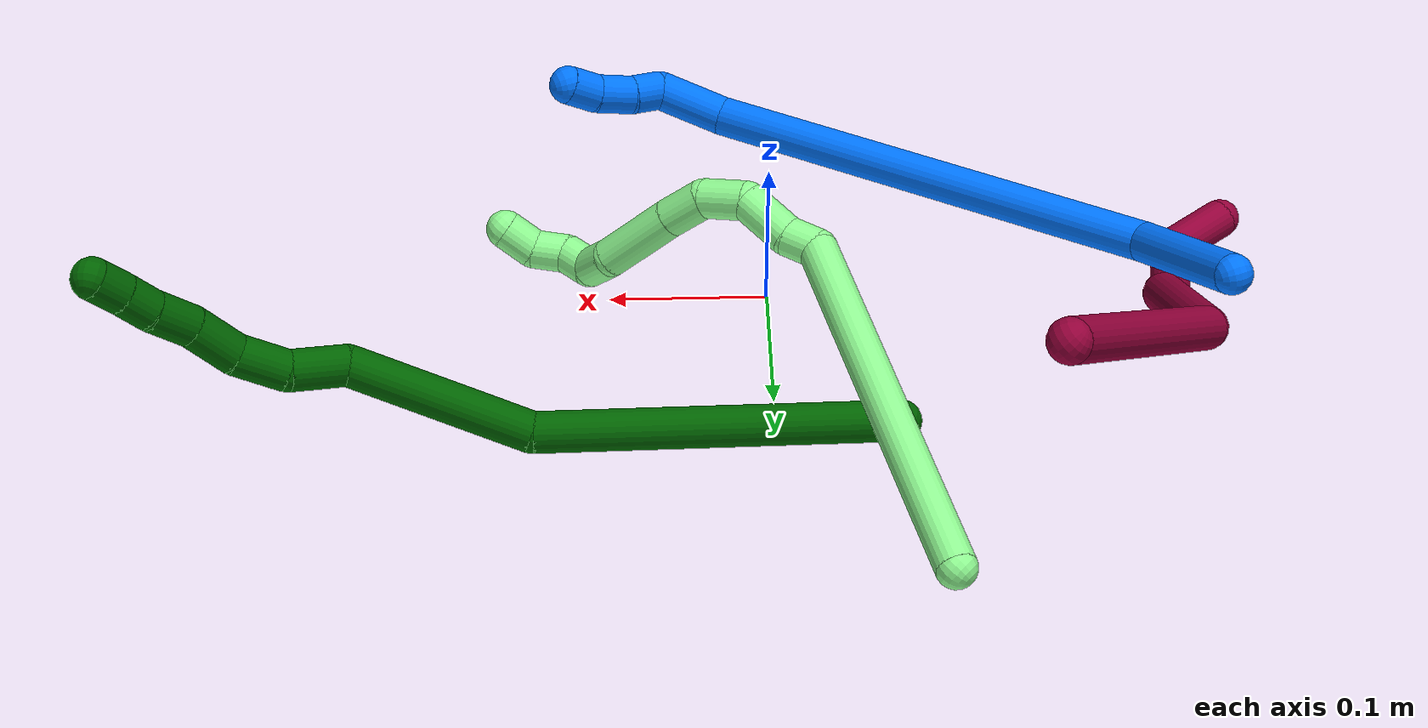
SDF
<sdf version="1.7">
 <world name="default">
  <model name="6">
   <static>0</static>
   <link name="6">
    <collision name="collision-cylinder-e_1_1_4">
     <pose>0.105768 0.010625 0.023665 -0.421993 1.33028 -0.332894</pose>
     <geometry><cylinder><radius>0.0125</radius><length>0.217805</length></cylinder></geometry>
     <surface>
      <friction><ode><mu>1.16</mu><mu2>1.16</mu2><slip1>0</slip1><slip2>0</slip2></ode></friction>
      <contact><ode><kp>1e+06</kp><kd>1</kd><max_vel>0</max_vel><min_depth>0.001</min_depth></ode></contact>
     </surface>
    </collision>
    <visual name="visual-cylinder-e_1_1_4">
     <pose>0.105768 0.010625 0.023665 -0.421993 1.33028 -0.332894</pose>
     <geometry><cylinder><radius>0.0125</radius><length>0.217805</length></cylinder></geometry>
     <material><ambient>0 0.392157 0.003922 1</ambient></material>
    </visual>
    <collision name="collision-cylinder-e_2_4_5">
     <pose>0.268173 0.018616 0.039592 2.81357 1.42748 2.76396</pose>
     <geometry><cylinder><radius>0.0125</radius><length>0.114448</length></cylinder></geometry>
     <surface>
      <friction><ode><mu>1.16</mu><mu2>1.16</mu2><slip1>0</slip1><slip2>0</slip2></ode></friction>
      <contact><ode><kp>1e+06</kp><kd>1</kd><max_vel>0</max_vel><min_depth>0.001</min_depth></ode></contact>
     </surface>
    </collision>
    <visual name="visual-cylinder-e_2_4_5">
     <pose>0.268173 0.018616 0.039592 2.81357 1.42748 2.76396</pose>
     <geometry><cylinder><radius>0.0125</radius><length>0.114448</length></cylinder></geometry>
     <material><ambient>0 0.392157 0.003922 1</ambient></material>
    </visual>
    <collision name="collision-cylinder-e_3_5_6">
     <pose>0.341027 0.013223 0.039268 0.356381 1.11696 0.224123</pose>
     <geometry><cylinder><radius>0.0125</radius><length>0.036086</length></cylinder></geometry>
     <surface>
      <friction><ode><mu>1.16</mu><mu2>1.16</mu2><slip1>0</slip1><slip2>0</slip2></ode></friction>
      <contact><ode><kp>1e+06</kp><kd>1</kd><max_vel>0</max_vel><min_depth>0.001</min_depth></ode></contact>
     </surface>
    </collision>
    <visual name="visual-cylinder-e_3_5_6">
     <pose>0.341027 0.013223 0.039268 0.356381 1.11696 0.224123</pose>
     <geometry><cylinder><radius>0.0125</radius><length>0.036086</length></cylinder></geometry>
     <material><ambient>0 0.392157 0.003922 1</ambient></material>
    </visual>
    <collision name="collision-cylinder-e_4_6_7">
     <pose>0.372571 0.006294 0.047186 1.4505 1.30335 1.18914</pose>
     <geometry><cylinder><radius>0.0125</radius><length>0.031786</length></cylinder></geometry>
     <surface>
      <friction><ode><mu>1.16</mu><mu2>1.16</mu2><slip1>0</slip1><slip2>0</slip2></ode></friction>
      <contact><ode><kp>1e+06</kp><kd>1</kd><max_vel>0</max_vel><min_depth>0.001</min_depth></ode></contact>
     </surface>
    </collision>
    <visual name="visual-cylinder-e_4_6_7">
     <pose>0.372571 0.006294 0.047186 1.4505 1.30335 1.18914</pose>
     <geometry><cylinder><radius>0.0125</radius><length>0.031786</length></cylinder></geometry>
     <material><ambient>0 0.392157 0.003922 1</ambient></material>
    </visual>
    <collision name="collision-cylinder-e_5_7_8">
     <pose>0.401057 -0.006326 0.04627 1.73727 0.99354 1.13977</pose>
     <geometry><cylinder><radius>0.0125</radius><length>0.031405</length></cylinder></geometry>
     <surface>
      <friction><ode><mu>1.16</mu><mu2>1.16</mu2><slip1>0</slip1><slip2>0</slip2></ode></friction>
      <contact><ode><kp>1e+06</kp><kd>1</kd><max_vel>0</max_vel><min_depth>0.001</min_depth></ode></contact>
     </surface>
    </collision>
    <visual name="visual-cylinder-e_5_7_8">
     <pose>0.401057 -0.006326 0.04627 1.73727 0.99354 1.13977</pose>
     <geometry><cylinder><radius>0.0125</radius><length>0.031405</length></cylinder></geometry>
     <material><ambient>0 0.392157 0.003922 1</ambient></material>
    </visual>
    <collision name="collision-cylinder-e_6_8_9">
     <pose>0.42537 -0.022602 0.046878 1.31713 0.943673 0.752128</pose>
     <geometry><cylinder><radius>0.0125</radius><length>0.027551</length></cylinder></geometry>
     <surface>
      <friction><ode><mu>1.16</mu><mu2>1.16</mu2><slip1>0</slip1><slip2>0</slip2></ode></friction>
      <contact><ode><kp>1e+06</kp><kd>1</kd><max_vel>0</max_vel><min_depth>0.001</min_depth></ode></contact>
     </surface>
    </collision>
    <visual name="visual-cylinder-e_6_8_9">
     <pose>0.42537 -0.022602 0.046878 1.31713 0.943673 0.752128</pose>
     <geometry><cylinder><radius>0.0125</radius><length>0.027551</length></cylinder></geometry>
     <material><ambient>0 0.392157 0.003922 1</ambient></material>
    </visual>
    <collision name="collision-cylinder-e_7_9_10">
     <pose>0.444754 -0.036342 0.048895 1.57274 0.94769 0.949268</pose>
     <geometry><cylinder><radius>0.0125</radius><length>0.020271</length></cylinder></geometry>
     <surface>
      <friction><ode><mu>1.16</mu><mu2>1.16</mu2><slip1>0</slip1><slip2>0</slip2></ode></friction>
      <contact><ode><kp>1e+06</kp><kd>1</kd><max_vel>0</max_vel><min_depth>0.001</min_depth></ode></contact>
     </surface>
    </collision>
    <visual name="visual-cylinder-e_7_9_10">
     <pose>0.444754 -0.036342 0.048895 1.57274 0.94769 0.949268</pose>
     <geometry><cylinder><radius>0.0125</radius><length>0.020271</length></cylinder></geometry>
     <material><ambient>0 0.392157 0.003922 1</ambient></material>
    </visual>
    <collision name="collision-cylinder-e_8_10_2">
     <pose>0.461122 -0.048564 0.04965 1.44998 0.907783 0.815933</pose>
     <geometry><cylinder><radius>0.0125</radius><length>0.020649</length></cylinder></geometry>
     <surface>
      <friction><ode><mu>1.16</mu><mu2>1.16</mu2><slip1>0</slip1><slip2>0</slip2></ode></friction>
      <contact><ode><kp>1e+06</kp><kd>1</kd><max_vel>0</max_vel><min_depth>0.001</min_depth></ode></contact>
     </surface>
    </collision>
    <visual name="visual-cylinder-e_8_10_2">
     <pose>0.461122 -0.048564 0.04965 1.44998 0.907783 0.815933</pose>
     <geometry><cylinder><radius>0.0125</radius><length>0.020649</length></cylinder></geometry>
     <material><ambient>0 0.392157 0.003922 1</ambient></material>
    </visual>
    <collision name="collision-sphere-2">
     <pose>0.469259 -0.054873 0.050416 0 -0 0</pose>
     <geometry><sphere><radius>0.0125</radius></sphere></geometry>
     <surface>
      <friction><ode><mu>1.16</mu><mu2>1.16</mu2><slip1>0</slip1><slip2>0</slip2></ode></friction>
      <contact><ode><kp>1e+06</kp><kd>1</kd><max_vel>0</max_vel><min_depth>0.001</min_depth></ode></contact>
     </surface>
    </collision>
    <visual name="visual-sphere-2">
     <pose>0.469259 -0.054873 0.050416 0 -0 0</pose>
     <geometry><sphere><radius>0.0125</radius></sphere></geometry>
     <material><ambient>0 0.392157 0.003922 1</ambient></material>
    </visual>
    <collision name="collision-sphere-10">
     <pose>0.452985 -0.042256 0.048884 0 -0 0</pose>
     <geometry><sphere><radius>0.0125</radius></sphere></geometry>
     <surface>
      <friction><ode><mu>1.16</mu><mu2>1.16</mu2><slip1>0</slip1><slip2>0</slip2></ode></friction>
      <contact><ode><kp>1e+06</kp><kd>1</kd><max_vel>0</max_vel><min_depth>0.001</min_depth></ode></contact>
     </surface>
    </collision>
    <visual name="visual-sphere-10">
     <pose>0.452985 -0.042256 0.048884 0 -0 0</pose>
     <geometry><sphere><radius>0.0125</radius></sphere></geometry>
     <material><ambient>0 0.392157 0.003922 1</ambient></material>
    </visual>
    <collision name="collision-sphere-9">
     <pose>0.436524 -0.030427 0.048907 0 -0 0</pose>
     <geometry><sphere><radius>0.0125</radius></sphere></geometry>
     <surface>
      <friction><ode><mu>1.16</mu><mu2>1.16</mu2><slip1>0</slip1><slip2>0</slip2></ode></friction>
      <contact><ode><kp>1e+06</kp><kd>1</kd><max_vel>0</max_vel><min_depth>0.001</min_depth></ode></contact>
     </surface>
    </collision>
    <visual name="visual-sphere-9">
     <pose>0.436524 -0.030427 0.048907 0 -0 0</pose>
     <geometry><sphere><radius>0.0125</radius></sphere></geometry>
     <material><ambient>0 0.392157 0.003922 1</ambient></material>
    </visual>
    <collision name="collision-sphere-4">
     <pose>0.211536 0.02125 0.04733 0 -0 0</pose>
     <geometry><sphere><radius>0.0125</radius></sphere></geometry>
     <surface>
      <friction><ode><mu>1.16</mu><mu2>1.16</mu2><slip1>0</slip1><slip2>0</slip2></ode></friction>
      <contact><ode><kp>1e+06</kp><kd>1</kd><max_vel>0</max_vel><min_depth>0.001</min_depth></ode></contact>
     </surface>
    </collision>
    <visual name="visual-sphere-4">
     <pose>0.211536 0.02125 0.04733 0 -0 0</pose>
     <geometry><sphere><radius>0.0125</radius></sphere></geometry>
     <material><ambient>0 0.392157 0.003922 1</ambient></material>
    </visual>
    <collision name="collision-sphere-1">
     <geometry><sphere><radius>0.0125</radius></sphere></geometry>
     <surface>
      <friction><ode><mu>1.16</mu><mu2>1.16</mu2><slip1>0</slip1><slip2>0</slip2></ode></friction>
      <contact><ode><kp>1e+06</kp><kd>1</kd><max_vel>0</max_vel><min_depth>0.001</min_depth></ode></contact>
     </surface>
    </collision>
    <visual name="visual-sphere-1">
     <geometry><sphere><radius>0.0125</radius></sphere></geometry>
     <material><ambient>0 0.392157 0.003922 1</ambient></material>
    </visual>
    <collision name="collision-sphere-8">
     <pose>0.414215 -0.014777 0.04485 0 -0 0</pose>
     <geometry><sphere><radius>0.0125</radius></sphere></geometry>
     <surface>
      <friction><ode><mu>1.16</mu><mu2>1.16</mu2><slip1>0</slip1><slip2>0</slip2></ode></friction>
      <contact><ode><kp>1e+06</kp><kd>1</kd><max_vel>0</max_vel><min_depth>0.001</min_depth></ode></contact>
     </surface>
    </collision>
    <visual name="visual-sphere-8">
     <pose>0.414215 -0.014777 0.04485 0 -0 0</pose>
     <geometry><sphere><radius>0.0125</radius></sphere></geometry>
     <material><ambient>0 0.392157 0.003922 1</ambient></material>
    </visual>
    <collision name="collision-sphere-5">
     <pose>0.324811 0.015983 0.031855 0 -0 0</pose>
     <geometry><sphere><radius>0.0125</radius></sphere></geometry>
     <surface>
      <friction><ode><mu>1.16</mu><mu2>1.16</mu2><slip1>0</slip1><slip2>0</slip2></ode></friction>
      <contact><ode><kp>1e+06</kp><kd>1</kd><max_vel>0</max_vel><min_depth>0.001</min_depth></ode></contact>
     </surface>
    </collision>
    <visual name="visual-sphere-5">
     <pose>0.324811 0.015983 0.031855 0 -0 0</pose>
     <geometry><sphere><radius>0.0125</radius></sphere></geometry>
     <material><ambient>0 0.392157 0.003922 1</ambient></material>
    </visual>
    <collision name="collision-sphere-6">
     <pose>0.357243 0.010464 0.046682 0 -0 0</pose>
     <geometry><sphere><radius>0.0125</radius></sphere></geometry>
     <surface>
      <friction><ode><mu>1.16</mu><mu2>1.16</mu2><slip1>0</slip1><slip2>0</slip2></ode></friction>
      <contact><ode><kp>1e+06</kp><kd>1</kd><max_vel>0</max_vel><min_depth>0.001</min_depth></ode></contact>
     </surface>
    </collision>
    <visual name="visual-sphere-6">
     <pose>0.357243 0.010464 0.046682 0 -0 0</pose>
     <geometry><sphere><radius>0.0125</radius></sphere></geometry>
     <material><ambient>0 0.392157 0.003922 1</ambient></material>
    </visual>
    <collision name="collision-sphere-7">
     <pose>0.387899 0.002124 0.04769 0 -0 0</pose>
     <geometry><sphere><radius>0.0125</radius></sphere></geometry>
     <surface>
      <friction><ode><mu>1.16</mu><mu2>1.16</mu2><slip1>0</slip1><slip2>0</slip2></ode></friction>
      <contact><ode><kp>1e+06</kp><kd>1</kd><max_vel>0</max_vel><min_depth>0.001</min_depth></ode></contact>
     </surface>
    </collision>
    <visual name="visual-sphere-7">
     <pose>0.387899 0.002124 0.04769 0 -0 0</pose>
     <geometry><sphere><radius>0.0125</radius></sphere></geometry>
     <material><ambient>0 0.392157 0.003922 1</ambient></material>
    </visual>
    <inertial>
     <pose>0.241458 0.005122 0.034727 0 -0 0</pose>
     <mass>0.5</mass>
     <inertia>
      <ixx>0.000166</ixx>
      <ixy>0</ixy>
      <ixz>0</ixz>
      <iyy>0.000948</iyy>
      <iyz>0</iyz>
      <izz>-0.001057</izz>
     </inertia>
    </inertial>
   </link>
   <pose>-0.07239 0.155148 0.031288 -1.90957 -0.207132 -0.106997</pose>
  </model>
  <model name="8">
   <static>0</static>
   <link name="8">
    <collision name="collision-cylinder-e_1_1_4">
     <pose>0.024283 -0.083923 0.000241 1.56792 0.281657 0.280858</pose>
     <geometry><cylinder><radius>0.0125</radius><length>0.174732</length></cylinder></geometry>
     <surface>
      <friction><ode><mu>1.16</mu><mu2>1.16</mu2><slip1>0</slip1><slip2>0</slip2></ode></friction>
      <contact><ode><kp>1e+06</kp><kd>1</kd><max_vel>0</max_vel><min_depth>0.001</min_depth></ode></contact>
     </surface>
    </collision>
    <visual name="visual-cylinder-e_1_1_4">
     <pose>0.024283 -0.083923 0.000241 1.56792 0.281657 0.280858</pose>
     <geometry><cylinder><radius>0.0125</radius><length>0.174732</length></cylinder></geometry>
     <material><ambient>0.584314 0 0.227451 1</ambient></material>
    </visual>
    <collision name="collision-cylinder-e_2_4_5">
     <pose>0.037176 -0.229739 0.026014 1.17956 -0.168519 -0.112927</pose>
     <geometry><cylinder><radius>0.0125</radius><length>0.135828</length></cylinder></geometry>
     <surface>
      <friction><ode><mu>1.16</mu><mu2>1.16</mu2><slip1>0</slip1><slip2>0</slip2></ode></friction>
      <contact><ode><kp>1e+06</kp><kd>1</kd><max_vel>0</max_vel><min_depth>0.001</min_depth></ode></contact>
     </surface>
    </collision>
    <visual name="visual-cylinder-e_2_4_5">
     <pose>0.037176 -0.229739 0.026014 1.17956 -0.168519 -0.112927</pose>
     <geometry><cylinder><radius>0.0125</radius><length>0.135828</length></cylinder></geometry>
     <material><ambient>0.584314 0 0.227451 1</ambient></material>
    </visual>
    <collision name="collision-cylinder-e_3_5_6">
     <pose>0.029177 -0.30301 0.055749 1.21683 0.272642 0.190519</pose>
     <geometry><cylinder><radius>0.0125</radius><length>0.025191</length></cylinder></geometry>
     <surface>
      <friction><ode><mu>1.16</mu><mu2>1.16</mu2><slip1>0</slip1><slip2>0</slip2></ode></friction>
      <contact><ode><kp>1e+06</kp><kd>1</kd><max_vel>0</max_vel><min_depth>0.001</min_depth></ode></contact>
     </surface>
    </collision>
    <visual name="visual-cylinder-e_3_5_6">
     <pose>0.029177 -0.30301 0.055749 1.21683 0.272642 0.190519</pose>
     <geometry><cylinder><radius>0.0125</radius><length>0.025191</length></cylinder></geometry>
     <material><ambient>0.584314 0 0.227451 1</ambient></material>
    </visual>
    <collision name="collision-cylinder-e_4_6_7">
     <pose>0.02665 -0.35234 0.066227 1.40699 -0.152661 -0.12957</pose>
     <geometry><cylinder><radius>0.0125</radius><length>0.077839</length></cylinder></geometry>
     <surface>
      <friction><ode><mu>1.16</mu><mu2>1.16</mu2><slip1>0</slip1><slip2>0</slip2></ode></friction>
      <contact><ode><kp>1e+06</kp><kd>1</kd><max_vel>0</max_vel><min_depth>0.001</min_depth></ode></contact>
     </surface>
    </collision>
    <visual name="visual-cylinder-e_4_6_7">
     <pose>0.02665 -0.35234 0.066227 1.40699 -0.152661 -0.12957</pose>
     <geometry><cylinder><radius>0.0125</radius><length>0.077839</length></cylinder></geometry>
     <material><ambient>0.584314 0 0.227451 1</ambient></material>
    </visual>
    <collision name="collision-cylinder-e_5_7_8">
     <pose>0.01708 -0.409077 0.075041 1.4363 -0.190308 -0.16641</pose>
     <geometry><cylinder><radius>0.0125</radius><length>0.03861</length></cylinder></geometry>
     <surface>
      <friction><ode><mu>1.16</mu><mu2>1.16</mu2><slip1>0</slip1><slip2>0</slip2></ode></friction>
      <contact><ode><kp>1e+06</kp><kd>1</kd><max_vel>0</max_vel><min_depth>0.001</min_depth></ode></contact>
     </surface>
    </collision>
    <visual name="visual-cylinder-e_5_7_8">
     <pose>0.01708 -0.409077 0.075041 1.4363 -0.190308 -0.16641</pose>
     <geometry><cylinder><radius>0.0125</radius><length>0.03861</length></cylinder></geometry>
     <material><ambient>0.584314 0 0.227451 1</ambient></material>
    </visual>
    <collision name="collision-cylinder-e_6_8_2">
     <pose>0.016495 -0.448086 0.065221 2.11946 0.128702 0.228827</pose>
     <geometry><cylinder><radius>0.0125</radius><length>0.047801</length></cylinder></geometry>
     <surface>
      <friction><ode><mu>1.16</mu><mu2>1.16</mu2><slip1>0</slip1><slip2>0</slip2></ode></friction>
      <contact><ode><kp>1e+06</kp><kd>1</kd><max_vel>0</max_vel><min_depth>0.001</min_depth></ode></contact>
     </surface>
    </collision>
    <visual name="visual-cylinder-e_6_8_2">
     <pose>0.016495 -0.448086 0.065221 2.11946 0.128702 0.228827</pose>
     <geometry><cylinder><radius>0.0125</radius><length>0.047801</length></cylinder></geometry>
     <material><ambient>0.584314 0 0.227451 1</ambient></material>
    </visual>
    <collision name="collision-sphere-2">
     <pose>0.019563 -0.46831 0.052859 0 -0 0</pose>
     <geometry><sphere><radius>0.0125</radius></sphere></geometry>
     <surface>
      <friction><ode><mu>1.16</mu><mu2>1.16</mu2><slip1>0</slip1><slip2>0</slip2></ode></friction>
      <contact><ode><kp>1e+06</kp><kd>1</kd><max_vel>0</max_vel><min_depth>0.001</min_depth></ode></contact>
     </surface>
    </collision>
    <visual name="visual-sphere-2">
     <pose>0.019563 -0.46831 0.052859 0 -0 0</pose>
     <geometry><sphere><radius>0.0125</radius></sphere></geometry>
     <material><ambient>0.584314 0 0.227451 1</ambient></material>
    </visual>
    <collision name="collision-sphere-4">
     <pose>0.048566 -0.167846 0.000483 0 -0 0</pose>
     <geometry><sphere><radius>0.0125</radius></sphere></geometry>
     <surface>
      <friction><ode><mu>1.16</mu><mu2>1.16</mu2><slip1>0</slip1><slip2>0</slip2></ode></friction>
      <contact><ode><kp>1e+06</kp><kd>1</kd><max_vel>0</max_vel><min_depth>0.001</min_depth></ode></contact>
     </surface>
    </collision>
    <visual name="visual-sphere-4">
     <pose>0.048566 -0.167846 0.000483 0 -0 0</pose>
     <geometry><sphere><radius>0.0125</radius></sphere></geometry>
     <material><ambient>0.584314 0 0.227451 1</ambient></material>
    </visual>
    <collision name="collision-sphere-1">
     <geometry><sphere><radius>0.0125</radius></sphere></geometry>
     <surface>
      <friction><ode><mu>1.16</mu><mu2>1.16</mu2><slip1>0</slip1><slip2>0</slip2></ode></friction>
      <contact><ode><kp>1e+06</kp><kd>1</kd><max_vel>0</max_vel><min_depth>0.001</min_depth></ode></contact>
     </surface>
    </collision>
    <visual name="visual-sphere-1">
     <geometry><sphere><radius>0.0125</radius></sphere></geometry>
     <material><ambient>0.584314 0 0.227451 1</ambient></material>
    </visual>
    <collision name="collision-sphere-8">
     <pose>0.013428 -0.427862 0.077583 0 -0 0</pose>
     <geometry><sphere><radius>0.0125</radius></sphere></geometry>
     <surface>
      <friction><ode><mu>1.16</mu><mu2>1.16</mu2><slip1>0</slip1><slip2>0</slip2></ode></friction>
      <contact><ode><kp>1e+06</kp><kd>1</kd><max_vel>0</max_vel><min_depth>0.001</min_depth></ode></contact>
     </surface>
    </collision>
    <visual name="visual-sphere-8">
     <pose>0.013428 -0.427862 0.077583 0 -0 0</pose>
     <geometry><sphere><radius>0.0125</radius></sphere></geometry>
     <material><ambient>0.584314 0 0.227451 1</ambient></material>
    </visual>
    <collision name="collision-sphere-5">
     <pose>0.025785 -0.291631 0.051544 0 -0 0</pose>
     <geometry><sphere><radius>0.0125</radius></sphere></geometry>
     <surface>
      <friction><ode><mu>1.16</mu><mu2>1.16</mu2><slip1>0</slip1><slip2>0</slip2></ode></friction>
      <contact><ode><kp>1e+06</kp><kd>1</kd><max_vel>0</max_vel><min_depth>0.001</min_depth></ode></contact>
     </surface>
    </collision>
    <visual name="visual-sphere-5">
     <pose>0.025785 -0.291631 0.051544 0 -0 0</pose>
     <geometry><sphere><radius>0.0125</radius></sphere></geometry>
     <material><ambient>0.584314 0 0.227451 1</ambient></material>
    </visual>
    <collision name="collision-sphere-6">
     <pose>0.032568 -0.314388 0.059954 0 -0 0</pose>
     <geometry><sphere><radius>0.0125</radius></sphere></geometry>
     <surface>
      <friction><ode><mu>1.16</mu><mu2>1.16</mu2><slip1>0</slip1><slip2>0</slip2></ode></friction>
      <contact><ode><kp>1e+06</kp><kd>1</kd><max_vel>0</max_vel><min_depth>0.001</min_depth></ode></contact>
     </surface>
    </collision>
    <visual name="visual-sphere-6">
     <pose>0.032568 -0.314388 0.059954 0 -0 0</pose>
     <geometry><sphere><radius>0.0125</radius></sphere></geometry>
     <material><ambient>0.584314 0 0.227451 1</ambient></material>
    </visual>
    <collision name="collision-sphere-7">
     <pose>0.020731 -0.390292 0.0725 0 -0 0</pose>
     <geometry><sphere><radius>0.0125</radius></sphere></geometry>
     <surface>
      <friction><ode><mu>1.16</mu><mu2>1.16</mu2><slip1>0</slip1><slip2>0</slip2></ode></friction>
      <contact><ode><kp>1e+06</kp><kd>1</kd><max_vel>0</max_vel><min_depth>0.001</min_depth></ode></contact>
     </surface>
    </collision>
    <visual name="visual-sphere-7">
     <pose>0.020731 -0.390292 0.0725 0 -0 0</pose>
     <geometry><sphere><radius>0.0125</radius></sphere></geometry>
     <material><ambient>0.584314 0 0.227451 1</ambient></material>
    </visual>
    <inertial>
     <pose>0.0271 -0.236282 0.0323 0 -0 0</pose>
     <mass>0.5</mass>
     <inertia>
      <ixx>0.000781</ixx>
      <ixy>0</ixy>
      <ixz>0</ixz>
      <iyy>0.000181</iyy>
      <iyz>0</iyz>
      <izz>0.000608</izz>
     </inertia>
    </inertial>
   </link>
   <pose>-0.135516 0.322832 0.23222 2.68343 0.603059 2.42528</pose>
  </model>
  <model name="13">
   <static>0</static>
   <link name="13">
    <collision name="collision-cylinder-e_1_1_4">
     <pose>-0.045272 -0.055041 0.099905 0.503561 -0.377831 -0.098287</pose>
     <geometry><cylinder><radius>0.0125</radius><length>0.24544</length></cylinder></geometry>
     <surface>
      <friction><ode><mu>1.16</mu><mu2>1.16</mu2><slip1>0</slip1><slip2>0</slip2></ode></friction>
      <contact><ode><kp>1e+06</kp><kd>1</kd><max_vel>0</max_vel><min_depth>0.001</min_depth></ode></contact>
     </surface>
    </collision>
    <visual name="visual-cylinder-e_1_1_4">
     <pose>-0.045272 -0.055041 0.099905 0.503561 -0.377831 -0.098287</pose>
     <geometry><cylinder><radius>0.0125</radius><length>0.24544</length></cylinder></geometry>
     <material><ambient>0.564706 0.984314 0.572549 1</ambient></material>
    </visual>
    <collision name="collision-cylinder-e_2_4_5">
     <pose>-0.087406 -0.111675 0.209537 0.162321 0.30825 0.025272</pose>
     <geometry><cylinder><radius>0.0125</radius><length>0.020687</length></cylinder></geometry>
     <surface>
      <friction><ode><mu>1.16</mu><mu2>1.16</mu2><slip1>0</slip1><slip2>0</slip2></ode></friction>
      <contact><ode><kp>1e+06</kp><kd>1</kd><max_vel>0</max_vel><min_depth>0.001</min_depth></ode></contact>
     </surface>
    </collision>
    <visual name="visual-cylinder-e_2_4_5">
     <pose>-0.087406 -0.111675 0.209537 0.162321 0.30825 0.025272</pose>
     <geometry><cylinder><radius>0.0125</radius><length>0.020687</length></cylinder></geometry>
     <material><ambient>0.564706 0.984314 0.572549 1</ambient></material>
    </visual>
    <collision name="collision-cylinder-e_3_5_6">
     <pose>-0.08424 -0.11552 0.236411 0.130554 0.001599 0.000105</pose>
     <geometry><cylinder><radius>0.0125</radius><length>0.03459</length></cylinder></geometry>
     <surface>
      <friction><ode><mu>1.16</mu><mu2>1.16</mu2><slip1>0</slip1><slip2>0</slip2></ode></friction>
      <contact><ode><kp>1e+06</kp><kd>1</kd><max_vel>0</max_vel><min_depth>0.001</min_depth></ode></contact>
     </surface>
    </collision>
    <visual name="visual-cylinder-e_3_5_6">
     <pose>-0.08424 -0.11552 0.236411 0.130554 0.001599 0.000105</pose>
     <geometry><cylinder><radius>0.0125</radius><length>0.03459</length></cylinder></geometry>
     <material><ambient>0.564706 0.984314 0.572549 1</ambient></material>
    </visual>
    <collision name="collision-cylinder-e_4_6_7">
     <pose>-0.076219 -0.122434 0.265077 0.384638 0.571656 0.114325</pose>
     <geometry><cylinder><radius>0.0125</radius><length>0.029549</length></cylinder></geometry>
     <surface>
      <friction><ode><mu>1.16</mu><mu2>1.16</mu2><slip1>0</slip1><slip2>0</slip2></ode></friction>
      <contact><ode><kp>1e+06</kp><kd>1</kd><max_vel>0</max_vel><min_depth>0.001</min_depth></ode></contact>
     </surface>
    </collision>
    <visual name="visual-cylinder-e_4_6_7">
     <pose>-0.076219 -0.122434 0.265077 0.384638 0.571656 0.114325</pose>
     <geometry><cylinder><radius>0.0125</radius><length>0.029549</length></cylinder></geometry>
     <material><ambient>0.564706 0.984314 0.572549 1</ambient></material>
    </visual>
    <collision name="collision-cylinder-e_5_7_8">
     <pose>-0.057013 -0.133692 0.281792 0.903413 0.927948 0.476342</pose>
     <geometry><cylinder><radius>0.0125</radius><length>0.028017</length></cylinder></geometry>
     <surface>
      <friction><ode><mu>1.16</mu><mu2>1.16</mu2><slip1>0</slip1><slip2>0</slip2></ode></friction>
      <contact><ode><kp>1e+06</kp><kd>1</kd><max_vel>0</max_vel><min_depth>0.001</min_depth></ode></contact>
     </surface>
    </collision>
    <visual name="visual-cylinder-e_5_7_8">
     <pose>-0.057013 -0.133692 0.281792 0.903413 0.927948 0.476342</pose>
     <geometry><cylinder><radius>0.0125</radius><length>0.028017</length></cylinder></geometry>
     <material><ambient>0.564706 0.984314 0.572549 1</ambient></material>
    </visual>
    <collision name="collision-cylinder-e_6_8_9">
     <pose>-0.024331 -0.152948 0.295219 0.994419 0.95785 0.549329</pose>
     <geometry><cylinder><radius>0.0125</radius><length>0.052496</length></cylinder></geometry>
     <surface>
      <friction><ode><mu>1.16</mu><mu2>1.16</mu2><slip1>0</slip1><slip2>0</slip2></ode></friction>
      <contact><ode><kp>1e+06</kp><kd>1</kd><max_vel>0</max_vel><min_depth>0.001</min_depth></ode></contact>
     </surface>
    </collision>
    <visual name="visual-cylinder-e_6_8_9">
     <pose>-0.024331 -0.152948 0.295219 0.994419 0.95785 0.549329</pose>
     <geometry><cylinder><radius>0.0125</radius><length>0.052496</length></cylinder></geometry>
     <material><ambient>0.564706 0.984314 0.572549 1</ambient></material>
    </visual>
    <collision name="collision-cylinder-e_7_9_10">
     <pose>0.003505 -0.174758 0.308192 1.09249 0.553363 0.341903</pose>
     <geometry><cylinder><radius>0.0125</radius><length>0.024227</length></cylinder></geometry>
     <surface>
      <friction><ode><mu>1.16</mu><mu2>1.16</mu2><slip1>0</slip1><slip2>0</slip2></ode></friction>
      <contact><ode><kp>1e+06</kp><kd>1</kd><max_vel>0</max_vel><min_depth>0.001</min_depth></ode></contact>
     </surface>
    </collision>
    <visual name="visual-cylinder-e_7_9_10">
     <pose>0.003505 -0.174758 0.308192 1.09249 0.553363 0.341903</pose>
     <geometry><cylinder><radius>0.0125</radius><length>0.024227</length></cylinder></geometry>
     <material><ambient>0.564706 0.984314 0.572549 1</ambient></material>
    </visual>
    <collision name="collision-cylinder-e_8_10_11">
     <pose>0.011279 -0.187838 0.322385 0.394163 0.13667 0.02733</pose>
     <geometry><cylinder><radius>0.0125</radius><length>0.020661</length></cylinder></geometry>
     <surface>
      <friction><ode><mu>1.16</mu><mu2>1.16</mu2><slip1>0</slip1><slip2>0</slip2></ode></friction>
      <contact><ode><kp>1e+06</kp><kd>1</kd><max_vel>0</max_vel><min_depth>0.001</min_depth></ode></contact>
     </surface>
    </collision>
    <visual name="visual-cylinder-e_8_10_11">
     <pose>0.011279 -0.187838 0.322385 0.394163 0.13667 0.02733</pose>
     <geometry><cylinder><radius>0.0125</radius><length>0.020661</length></cylinder></geometry>
     <material><ambient>0.564706 0.984314 0.572549 1</ambient></material>
    </visual>
    <collision name="collision-cylinder-e_9_11_12">
     <pose>0.018884 -0.191464 0.340938 -0.033413 0.597528 -0.010291</pose>
     <geometry><cylinder><radius>0.0125</radius><length>0.022035</length></cylinder></geometry>
     <surface>
      <friction><ode><mu>1.16</mu><mu2>1.16</mu2><slip1>0</slip1><slip2>0</slip2></ode></friction>
      <contact><ode><kp>1e+06</kp><kd>1</kd><max_vel>0</max_vel><min_depth>0.001</min_depth></ode></contact>
     </surface>
    </collision>
    <visual name="visual-cylinder-e_9_11_12">
     <pose>0.018884 -0.191464 0.340938 -0.033413 0.597528 -0.010291</pose>
     <geometry><cylinder><radius>0.0125</radius><length>0.022035</length></cylinder></geometry>
     <material><ambient>0.564706 0.984314 0.572549 1</ambient></material>
    </visual>
    <collision name="collision-cylinder-e_10_12_2">
     <pose>0.026617 -0.18764 0.360508 -0.324375 0.138031 -0.02262</pose>
     <geometry><cylinder><radius>0.0125</radius><length>0.022298</length></cylinder></geometry>
     <surface>
      <friction><ode><mu>1.16</mu><mu2>1.16</mu2><slip1>0</slip1><slip2>0</slip2></ode></friction>
      <contact><ode><kp>1e+06</kp><kd>1</kd><max_vel>0</max_vel><min_depth>0.001</min_depth></ode></contact>
     </surface>
    </collision>
    <visual name="visual-cylinder-e_10_12_2">
     <pose>0.026617 -0.18764 0.360508 -0.324375 0.138031 -0.02262</pose>
     <geometry><cylinder><radius>0.0125</radius><length>0.022298</length></cylinder></geometry>
     <material><ambient>0.564706 0.984314 0.572549 1</ambient></material>
    </visual>
    <collision name="collision-sphere-2">
     <pose>0.028151 -0.18412 0.370975 0 -0 0</pose>
     <geometry><sphere><radius>0.0125</radius></sphere></geometry>
     <surface>
      <friction><ode><mu>1.16</mu><mu2>1.16</mu2><slip1>0</slip1><slip2>0</slip2></ode></friction>
      <contact><ode><kp>1e+06</kp><kd>1</kd><max_vel>0</max_vel><min_depth>0.001</min_depth></ode></contact>
     </surface>
    </collision>
    <visual name="visual-sphere-2">
     <pose>0.028151 -0.18412 0.370975 0 -0 0</pose>
     <geometry><sphere><radius>0.0125</radius></sphere></geometry>
     <material><ambient>0.564706 0.984314 0.572549 1</ambient></material>
    </visual>
    <collision name="collision-sphere-12">
     <pose>0.025083 -0.191159 0.350041 0 -0 0</pose>
     <geometry><sphere><radius>0.0125</radius></sphere></geometry>
     <surface>
      <friction><ode><mu>1.16</mu><mu2>1.16</mu2><slip1>0</slip1><slip2>0</slip2></ode></friction>
      <contact><ode><kp>1e+06</kp><kd>1</kd><max_vel>0</max_vel><min_depth>0.001</min_depth></ode></contact>
     </surface>
    </collision>
    <visual name="visual-sphere-12">
     <pose>0.025083 -0.191159 0.350041 0 -0 0</pose>
     <geometry><sphere><radius>0.0125</radius></sphere></geometry>
     <material><ambient>0.564706 0.984314 0.572549 1</ambient></material>
    </visual>
    <collision name="collision-sphere-11">
     <pose>0.012686 -0.191768 0.331834 0 -0 0</pose>
     <geometry><sphere><radius>0.0125</radius></sphere></geometry>
     <surface>
      <friction><ode><mu>1.16</mu><mu2>1.16</mu2><slip1>0</slip1><slip2>0</slip2></ode></friction>
      <contact><ode><kp>1e+06</kp><kd>1</kd><max_vel>0</max_vel><min_depth>0.001</min_depth></ode></contact>
     </surface>
    </collision>
    <visual name="visual-sphere-11">
     <pose>0.012686 -0.191768 0.331834 0 -0 0</pose>
     <geometry><sphere><radius>0.0125</radius></sphere></geometry>
     <material><ambient>0.564706 0.984314 0.572549 1</ambient></material>
    </visual>
    <collision name="collision-sphere-10">
     <pose>0.009871 -0.183907 0.312935 0 -0 0</pose>
     <geometry><sphere><radius>0.0125</radius></sphere></geometry>
     <surface>
      <friction><ode><mu>1.16</mu><mu2>1.16</mu2><slip1>0</slip1><slip2>0</slip2></ode></friction>
      <contact><ode><kp>1e+06</kp><kd>1</kd><max_vel>0</max_vel><min_depth>0.001</min_depth></ode></contact>
     </surface>
    </collision>
    <visual name="visual-sphere-10">
     <pose>0.009871 -0.183907 0.312935 0 -0 0</pose>
     <geometry><sphere><radius>0.0125</radius></sphere></geometry>
     <material><ambient>0.564706 0.984314 0.572549 1</ambient></material>
    </visual>
    <collision name="collision-sphere-9">
     <pose>-0.002862 -0.165609 0.303448 0 -0 0</pose>
     <geometry><sphere><radius>0.0125</radius></sphere></geometry>
     <surface>
      <friction><ode><mu>1.16</mu><mu2>1.16</mu2><slip1>0</slip1><slip2>0</slip2></ode></friction>
      <contact><ode><kp>1e+06</kp><kd>1</kd><max_vel>0</max_vel><min_depth>0.001</min_depth></ode></contact>
     </surface>
    </collision>
    <visual name="visual-sphere-9">
     <pose>-0.002862 -0.165609 0.303448 0 -0 0</pose>
     <geometry><sphere><radius>0.0125</radius></sphere></geometry>
     <material><ambient>0.564706 0.984314 0.572549 1</ambient></material>
    </visual>
    <collision name="collision-sphere-4">
     <pose>-0.090544 -0.110083 0.19981 0 -0 0</pose>
     <geometry><sphere><radius>0.0125</radius></sphere></geometry>
     <surface>
      <friction><ode><mu>1.16</mu><mu2>1.16</mu2><slip1>0</slip1><slip2>0</slip2></ode></friction>
      <contact><ode><kp>1e+06</kp><kd>1</kd><max_vel>0</max_vel><min_depth>0.001</min_depth></ode></contact>
     </surface>
    </collision>
    <visual name="visual-sphere-4">
     <pose>-0.090544 -0.110083 0.19981 0 -0 0</pose>
     <geometry><sphere><radius>0.0125</radius></sphere></geometry>
     <material><ambient>0.564706 0.984314 0.572549 1</ambient></material>
    </visual>
    <collision name="collision-sphere-1">
     <geometry><sphere><radius>0.0125</radius></sphere></geometry>
     <surface>
      <friction><ode><mu>1.16</mu><mu2>1.16</mu2><slip1>0</slip1><slip2>0</slip2></ode></friction>
      <contact><ode><kp>1e+06</kp><kd>1</kd><max_vel>0</max_vel><min_depth>0.001</min_depth></ode></contact>
     </surface>
    </collision>
    <visual name="visual-sphere-1">
     <geometry><sphere><radius>0.0125</radius></sphere></geometry>
     <material><ambient>0.564706 0.984314 0.572549 1</ambient></material>
    </visual>
    <collision name="collision-sphere-8">
     <pose>-0.045801 -0.140288 0.28699 0 -0 0</pose>
     <geometry><sphere><radius>0.0125</radius></sphere></geometry>
     <surface>
      <friction><ode><mu>1.16</mu><mu2>1.16</mu2><slip1>0</slip1><slip2>0</slip2></ode></friction>
      <contact><ode><kp>1e+06</kp><kd>1</kd><max_vel>0</max_vel><min_depth>0.001</min_depth></ode></contact>
     </surface>
    </collision>
    <visual name="visual-sphere-8">
     <pose>-0.045801 -0.140288 0.28699 0 -0 0</pose>
     <geometry><sphere><radius>0.0125</radius></sphere></geometry>
     <material><ambient>0.564706 0.984314 0.572549 1</ambient></material>
    </visual>
    <collision name="collision-sphere-5">
     <pose>-0.084268 -0.113268 0.219263 0 -0 0</pose>
     <geometry><sphere><radius>0.0125</radius></sphere></geometry>
     <surface>
      <friction><ode><mu>1.16</mu><mu2>1.16</mu2><slip1>0</slip1><slip2>0</slip2></ode></friction>
      <contact><ode><kp>1e+06</kp><kd>1</kd><max_vel>0</max_vel><min_depth>0.001</min_depth></ode></contact>
     </surface>
    </collision>
    <visual name="visual-sphere-5">
     <pose>-0.084268 -0.113268 0.219263 0 -0 0</pose>
     <geometry><sphere><radius>0.0125</radius></sphere></geometry>
     <material><ambient>0.564706 0.984314 0.572549 1</ambient></material>
    </visual>
    <collision name="collision-sphere-6">
     <pose>-0.084212 -0.117771 0.253559 0 -0 0</pose>
     <geometry><sphere><radius>0.0125</radius></sphere></geometry>
     <surface>
      <friction><ode><mu>1.16</mu><mu2>1.16</mu2><slip1>0</slip1><slip2>0</slip2></ode></friction>
      <contact><ode><kp>1e+06</kp><kd>1</kd><max_vel>0</max_vel><min_depth>0.001</min_depth></ode></contact>
     </surface>
    </collision>
    <visual name="visual-sphere-6">
     <pose>-0.084212 -0.117771 0.253559 0 -0 0</pose>
     <geometry><sphere><radius>0.0125</radius></sphere></geometry>
     <material><ambient>0.564706 0.984314 0.572549 1</ambient></material>
    </visual>
    <collision name="collision-sphere-7">
     <pose>-0.068225 -0.127096 0.276594 0 -0 0</pose>
     <geometry><sphere><radius>0.0125</radius></sphere></geometry>
     <surface>
      <friction><ode><mu>1.16</mu><mu2>1.16</mu2><slip1>0</slip1><slip2>0</slip2></ode></friction>
      <contact><ode><kp>1e+06</kp><kd>1</kd><max_vel>0</max_vel><min_depth>0.001</min_depth></ode></contact>
     </surface>
    </collision>
    <visual name="visual-sphere-7">
     <pose>-0.068225 -0.127096 0.276594 0 -0 0</pose>
     <geometry><sphere><radius>0.0125</radius></sphere></geometry>
     <material><ambient>0.564706 0.984314 0.572549 1</ambient></material>
    </visual>
    <inertial>
     <pose>-0.039266 -0.103451 0.195874 0 -0 0</pose>
     <mass>0.5</mass>
     <inertia>
      <ixx>0.001067</ixx>
      <ixy>0</ixy>
      <ixz>0</ixz>
      <iyy>0.001012</iyy>
      <iyz>0</iyz>
      <izz>0.001037</izz>
     </inertia>
    </inertial>
   </link>
   <pose>-0.093345 0.280122 0.032146 1.08639 0.568535 0.607457</pose>
  </model>
  <model name="14">
   <static>0</static>
   <link name="14">
    <collision name="collision-cylinder-e_1_1_4">
     <pose>0.045272 -0.012109 0.003842 1.26357 1.29723 1.01298</pose>
     <geometry><cylinder><radius>0.0125</radius><length>0.094041</length></cylinder></geometry>
     <surface>
      <friction><ode><mu>1.16</mu><mu2>1.16</mu2><slip1>0</slip1><slip2>0</slip2></ode></friction>
      <contact><ode><kp>1e+06</kp><kd>1</kd><max_vel>0</max_vel><min_depth>0.001</min_depth></ode></contact>
     </surface>
    </collision>
    <visual name="visual-cylinder-e_1_1_4">
     <pose>0.045272 -0.012109 0.003842 1.26357 1.29723 1.01298</pose>
     <geometry><cylinder><radius>0.0125</radius><length>0.094041</length></cylinder></geometry>
     <material><ambient>0 0.462745 1 1</ambient></material>
    </visual>
    <collision name="collision-cylinder-e_2_4_5">
     <pose>0.184962 -0.093719 0.098462 0.653424 0.690303 0.242472</pose>
     <geometry><cylinder><radius>0.0125</radius><length>0.296554</length></cylinder></geometry>
     <surface>
      <friction><ode><mu>1.16</mu><mu2>1.16</mu2><slip1>0</slip1><slip2>0</slip2></ode></friction>
      <contact><ode><kp>1e+06</kp><kd>1</kd><max_vel>0</max_vel><min_depth>0.001</min_depth></ode></contact>
     </surface>
    </collision>
    <visual name="visual-cylinder-e_2_4_5">
     <pose>0.184962 -0.093719 0.098462 0.653424 0.690303 0.242472</pose>
     <geometry><cylinder><radius>0.0125</radius><length>0.296554</length></cylinder></geometry>
     <material><ambient>0 0.462745 1 1</ambient></material>
    </visual>
    <collision name="collision-cylinder-e_3_5_6">
     <pose>0.284795 -0.176535 0.206078 0.669054 0.247053 0.086259</pose>
     <geometry><cylinder><radius>0.0125</radius><length>0.044275</length></cylinder></geometry>
     <surface>
      <friction><ode><mu>1.16</mu><mu2>1.16</mu2><slip1>0</slip1><slip2>0</slip2></ode></friction>
      <contact><ode><kp>1e+06</kp><kd>1</kd><max_vel>0</max_vel><min_depth>0.001</min_depth></ode></contact>
     </surface>
    </collision>
    <visual name="visual-cylinder-e_3_5_6">
     <pose>0.284795 -0.176535 0.206078 0.669054 0.247053 0.086259</pose>
     <geometry><cylinder><radius>0.0125</radius><length>0.044275</length></cylinder></geometry>
     <material><ambient>0 0.462745 1 1</ambient></material>
    </visual>
    <collision name="collision-cylinder-e_4_6_7">
     <pose>0.288849 -0.190648 0.232984 0.079253 -0.133796 -0.005313</pose>
     <geometry><cylinder><radius>0.0125</radius><length>0.020383</length></cylinder></geometry>
     <surface>
      <friction><ode><mu>1.16</mu><mu2>1.16</mu2><slip1>0</slip1><slip2>0</slip2></ode></friction>
      <contact><ode><kp>1e+06</kp><kd>1</kd><max_vel>0</max_vel><min_depth>0.001</min_depth></ode></contact>
     </surface>
    </collision>
    <visual name="visual-cylinder-e_4_6_7">
     <pose>0.288849 -0.190648 0.232984 0.079253 -0.133796 -0.005313</pose>
     <geometry><cylinder><radius>0.0125</radius><length>0.020383</length></cylinder></geometry>
     <material><ambient>0 0.462745 1 1</ambient></material>
    </visual>
    <collision name="collision-cylinder-e_5_7_8">
     <pose>0.286531 -0.194767 0.254695 0.277732 -0.079002 -0.011047</pose>
     <geometry><cylinder><radius>0.0125</radius><length>0.024287</length></cylinder></geometry>
     <surface>
      <friction><ode><mu>1.16</mu><mu2>1.16</mu2><slip1>0</slip1><slip2>0</slip2></ode></friction>
      <contact><ode><kp>1e+06</kp><kd>1</kd><max_vel>0</max_vel><min_depth>0.001</min_depth></ode></contact>
     </surface>
    </collision>
    <visual name="visual-cylinder-e_5_7_8">
     <pose>0.286531 -0.194767 0.254695 0.277732 -0.079002 -0.011047</pose>
     <geometry><cylinder><radius>0.0125</radius><length>0.024287</length></cylinder></geometry>
     <material><ambient>0 0.462745 1 1</ambient></material>
    </visual>
    <collision name="collision-cylinder-e_6_8_2">
     <pose>0.283568 -0.202956 0.275107 0.506935 -0.197188 -0.051234</pose>
     <geometry><cylinder><radius>0.0125</radius><length>0.020459</length></cylinder></geometry>
     <surface>
      <friction><ode><mu>1.16</mu><mu2>1.16</mu2><slip1>0</slip1><slip2>0</slip2></ode></friction>
      <contact><ode><kp>1e+06</kp><kd>1</kd><max_vel>0</max_vel><min_depth>0.001</min_depth></ode></contact>
     </surface>
    </collision>
    <visual name="visual-cylinder-e_6_8_2">
     <pose>0.283568 -0.202956 0.275107 0.506935 -0.197188 -0.051234</pose>
     <geometry><cylinder><radius>0.0125</radius><length>0.020459</length></cylinder></geometry>
     <material><ambient>0 0.462745 1 1</ambient></material>
    </visual>
    <collision name="collision-sphere-2">
     <pose>0.281564 -0.207827 0.283876 0 -0 0</pose>
     <geometry><sphere><radius>0.0125</radius></sphere></geometry>
     <surface>
      <friction><ode><mu>1.16</mu><mu2>1.16</mu2><slip1>0</slip1><slip2>0</slip2></ode></friction>
      <contact><ode><kp>1e+06</kp><kd>1</kd><max_vel>0</max_vel><min_depth>0.001</min_depth></ode></contact>
     </surface>
    </collision>
    <visual name="visual-sphere-2">
     <pose>0.281564 -0.207827 0.283876 0 -0 0</pose>
     <geometry><sphere><radius>0.0125</radius></sphere></geometry>
     <material><ambient>0 0.462745 1 1</ambient></material>
    </visual>
    <collision name="collision-sphere-4">
     <pose>0.090544 -0.024217 0.007683 0 -0 0</pose>
     <geometry><sphere><radius>0.0125</radius></sphere></geometry>
     <surface>
      <friction><ode><mu>1.16</mu><mu2>1.16</mu2><slip1>0</slip1><slip2>0</slip2></ode></friction>
      <contact><ode><kp>1e+06</kp><kd>1</kd><max_vel>0</max_vel><min_depth>0.001</min_depth></ode></contact>
     </surface>
    </collision>
    <visual name="visual-sphere-4">
     <pose>0.090544 -0.024217 0.007683 0 -0 0</pose>
     <geometry><sphere><radius>0.0125</radius></sphere></geometry>
     <material><ambient>0 0.462745 1 1</ambient></material>
    </visual>
    <collision name="collision-sphere-1">
     <geometry><sphere><radius>0.0125</radius></sphere></geometry>
     <surface>
      <friction><ode><mu>1.16</mu><mu2>1.16</mu2><slip1>0</slip1><slip2>0</slip2></ode></friction>
      <contact><ode><kp>1e+06</kp><kd>1</kd><max_vel>0</max_vel><min_depth>0.001</min_depth></ode></contact>
     </surface>
    </collision>
    <visual name="visual-sphere-1">
     <geometry><sphere><radius>0.0125</radius></sphere></geometry>
     <material><ambient>0 0.462745 1 1</ambient></material>
    </visual>
    <collision name="collision-sphere-8">
     <pose>0.285573 -0.198086 0.266337 0 -0 0</pose>
     <geometry><sphere><radius>0.0125</radius></sphere></geometry>
     <surface>
      <friction><ode><mu>1.16</mu><mu2>1.16</mu2><slip1>0</slip1><slip2>0</slip2></ode></friction>
      <contact><ode><kp>1e+06</kp><kd>1</kd><max_vel>0</max_vel><min_depth>0.001</min_depth></ode></contact>
     </surface>
    </collision>
    <visual name="visual-sphere-8">
     <pose>0.285573 -0.198086 0.266337 0 -0 0</pose>
     <geometry><sphere><radius>0.0125</radius></sphere></geometry>
     <material><ambient>0 0.462745 1 1</ambient></material>
    </visual>
    <collision name="collision-sphere-5">
     <pose>0.279381 -0.163221 0.18924 0 -0 0</pose>
     <geometry><sphere><radius>0.0125</radius></sphere></geometry>
     <surface>
      <friction><ode><mu>1.16</mu><mu2>1.16</mu2><slip1>0</slip1><slip2>0</slip2></ode></friction>
      <contact><ode><kp>1e+06</kp><kd>1</kd><max_vel>0</max_vel><min_depth>0.001</min_depth></ode></contact>
     </surface>
    </collision>
    <visual name="visual-sphere-5">
     <pose>0.279381 -0.163221 0.18924 0 -0 0</pose>
     <geometry><sphere><radius>0.0125</radius></sphere></geometry>
     <material><ambient>0 0.462745 1 1</ambient></material>
    </visual>
    <collision name="collision-sphere-6">
     <pose>0.290208 -0.189849 0.222916 0 -0 0</pose>
     <geometry><sphere><radius>0.0125</radius></sphere></geometry>
     <surface>
      <friction><ode><mu>1.16</mu><mu2>1.16</mu2><slip1>0</slip1><slip2>0</slip2></ode></friction>
      <contact><ode><kp>1e+06</kp><kd>1</kd><max_vel>0</max_vel><min_depth>0.001</min_depth></ode></contact>
     </surface>
    </collision>
    <visual name="visual-sphere-6">
     <pose>0.290208 -0.189849 0.222916 0 -0 0</pose>
     <geometry><sphere><radius>0.0125</radius></sphere></geometry>
     <material><ambient>0 0.462745 1 1</ambient></material>
    </visual>
    <collision name="collision-sphere-7">
     <pose>0.287489 -0.191448 0.243053 0 -0 0</pose>
     <geometry><sphere><radius>0.0125</radius></sphere></geometry>
     <surface>
      <friction><ode><mu>1.16</mu><mu2>1.16</mu2><slip1>0</slip1><slip2>0</slip2></ode></friction>
      <contact><ode><kp>1e+06</kp><kd>1</kd><max_vel>0</max_vel><min_depth>0.001</min_depth></ode></contact>
     </surface>
    </collision>
    <visual name="visual-sphere-7">
     <pose>0.287489 -0.191448 0.243053 0 -0 0</pose>
     <geometry><sphere><radius>0.0125</radius></sphere></geometry>
     <material><ambient>0 0.462745 1 1</ambient></material>
    </visual>
    <inertial>
     <pose>0.180733 -0.099033 0.110496 0 -0 0</pose>
     <mass>0.5</mass>
     <inertia>
      <ixx>0.002103</ixx>
      <ixy>0</ixy>
      <ixz>0</ixz>
      <iyy>0.002373</iyy>
      <iyz>0</iyz>
      <izz>-0.000391</izz>
     </inertia>
    </inertial>
   </link>
   <pose>-0.264419 0.124362 0.113592 -1.60762 0.66128 -1.23037</pose>
  </model>
 </world>
</sdf>
